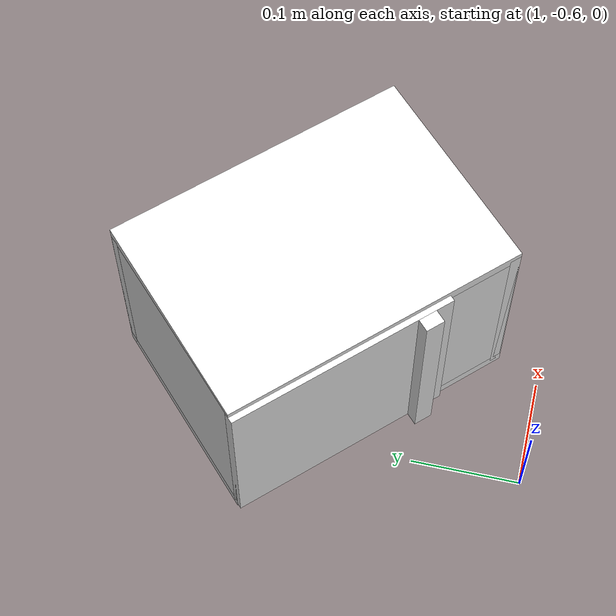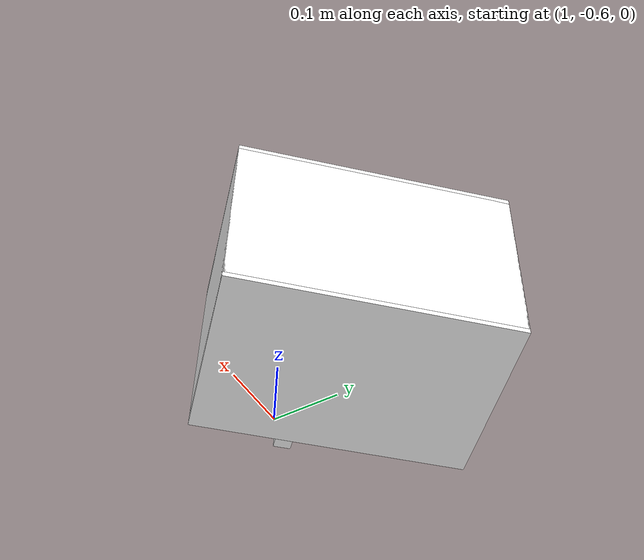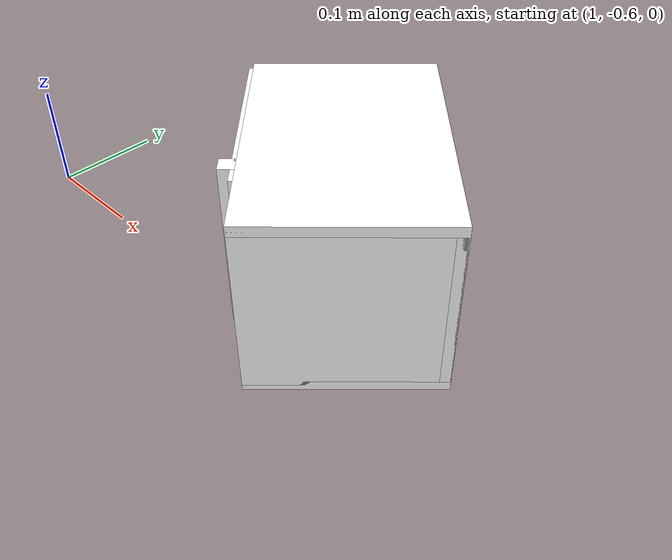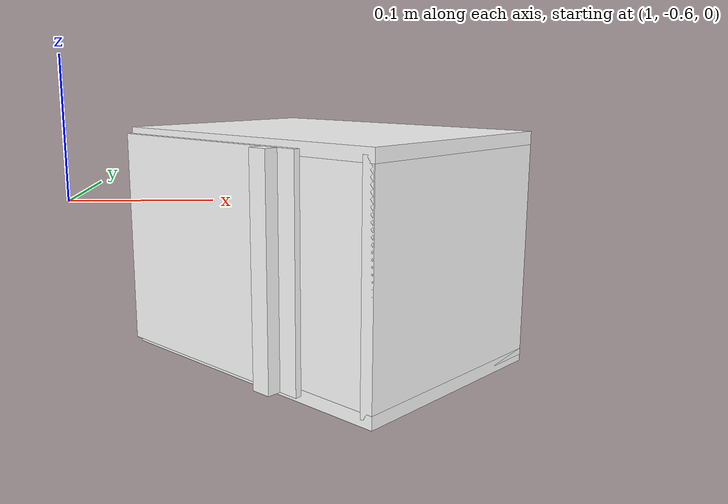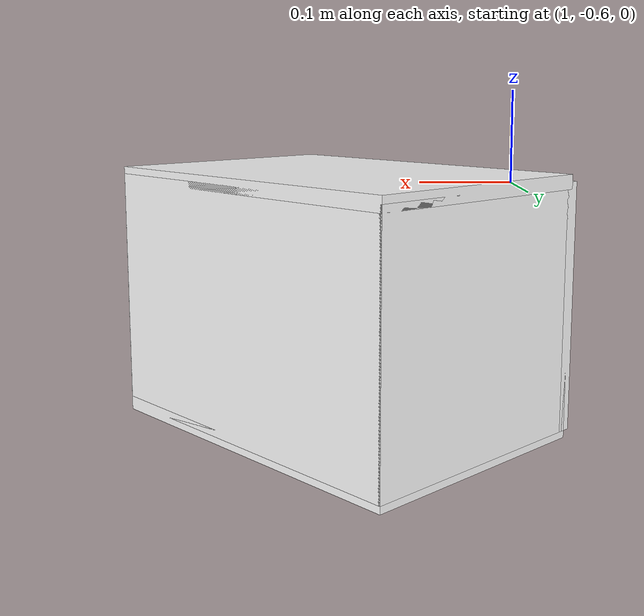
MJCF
<mujoco model="cabinet">
    <compiler angle="radian" eulerseq='zxy' />
    <option gravity = "0 0 0" />
    <option>
        <flag contact = "disable"/>
    </option>
    <statistic	extent="1.0" center="0.0 0.0 0.0"/>
    <visual>
        <map fogstart="3" fogend="5" force="0.1" znear=" 0.100000 " zfar=" 12.000000 "/>
    </visual>
    <size njmax="500" nconmax="100" />
    <actuator>
        <velocity joint="bottom_left_hinge" name="viva_revolution" kv='10'></velocity>
    </actuator>
    <asset>
        <texture builtin="flat" name="tabletex" height="32" width="32" rgb1="1 1 1" type="cube"></texture>
        <texture builtin="flat" name="objtex" height="32" width="32" rgb1="1 1 1" type="cube"></texture>
        <texture builtin="flat" name="handletex" height="32" width="32" rgb1="1 1 1" type="cube"></texture>
        <texture builtin="flat" name="wallpaper" height="32" width="32" rgb1="1 0 0" type="cube"></texture>
        <texture builtin="flat" name="kp" height="32" width="32" rgb1="1 1 1" type="cube"></texture>
        <material name="geomTable" shininess="0.03" specular="0.75" texture="tabletex"></material>
        <material name="geomObj" shininess="0.03" specular="0.75" texture="objtex"></material>
        <material name="geomHandle" shininess="0.03" specular="0.75" texture="handletex"></material>
        <material name="ax" shininess="0.03" specular="0.75" texture="wallpaper"></material>
        <material name="bg" shininess="0.03" specular="0.75" texture="wallpaper"></material>
        <material name="geomKeypad" shininess="0.03" specular="0.75" texture="kp"></material>
    </asset>
    <worldbody>
        <body name="cabinet_bottom" pos= " 1.188423 -0.369139 -0.187902 "  quat= " -0.372199 0.000000 0.000000 0.928153" >
            <inertial pos="0 0 0" mass="1" diaginertia="1 1 1" />
            <geom size= " 0.113403 0.161576 0.006248 "  type="box" material="geomObj" name="b"/>
            <body name="cabinet_left" pos= " 0.000000 -0.155328 0.107532 " >
                <inertial pos="0 0 0" mass="1" diaginertia="1 1 1" />
                <geom size= " 0.113403 0.006248 0.107532 "  type="box" material="geomObj" name="c" />
            </body>
            <body name="cabinet_right" pos= " 0.000000 0.155328 0.107532 " >
                <inertial pos="0 0 0" mass="1" diaginertia="1 1 1" />
                <geom size= " 0.113403 0.006248 0.107532 "  type="box" material="geomObj" name="d" />
            </body>
            <body name="cabinet_top" pos= " 0.000000 0.000000 0.215064 " >
                <inertial pos="0 0 0" mass="1" diaginertia="1 1 1" />
                <geom size= " 0.113403 0.161576 0.006248 "  type="box" material="geomObj" name="e"/>
            </body>
            <body name="cabinet_back" pos= " -0.107155 0.000000 0.107532 "  >
                <inertial pos="0 0 0" mass="1" diaginertia="1 1 1" />
                <geom size= " 0.006248 0.161576 0.107532 "  type="box" material="geomObj" name="f" />
            </body>
            <body name="cabinet_keypad" pos= " 0.006248 0.120182 0.107532 " >
                <inertial pos="0 0 0" mass="1" diaginertia="1 1 1" />
                <geom size= " 0.107155 0.040394 0.101284 "  type="box" material="geomKeypad" name="keypizzlemynizzle" />
            </body>
            <body name="cabinet_left_hinge" pos= " 0.113403 -0.161576 0.107532 " >
                <inertial pos= " 0.000000 0.121182 0.000000 "  mass="1" diaginertia="1 1 1" />
                <joint name="bottom_left_hinge" type="hinge" pos="0 0 0" axis="0 0 1" limited="true" range= "-2.3 0"  />
                <geom size= " 0.006248 0.121182 0.107532 "  pos= " 0.000000 0.121182 0.000000 "  type="box" material="geomObj" name="g"/>
                <body name="handle_link" pos= " 0.010000 0.212364 0.000000 " >
                    <inertial pos="0 0 0" mass="1" diaginertia="1 1 1" />
                    <geom size= " 0.010000 0.010000 0.107532 "  type="box" material="geomHandle" name="h"/>
                </body>
            </body>
        </body>
        <body name="external_camera_body_0" pos="0.0 0 0.00" >
            <camera euler="-1.57 1.57 0.0" fovy=" 54.280851 " name="external_camera_0" pos="0.0 0 0"></camera>
            <inertial pos= " 0.00 0.0 0.000000 " mass="1" diaginertia="1 1 1" />
            <joint name="cam_j" pos="0.0 0 0" axis = "1 0 0" type="free" />
        </body>
    </worldbody>
</mujoco>
